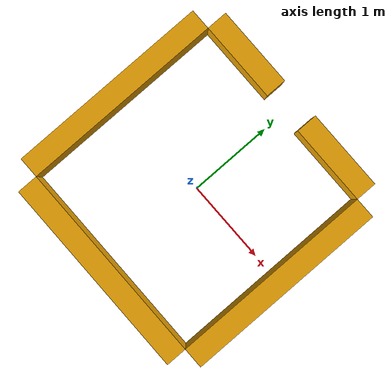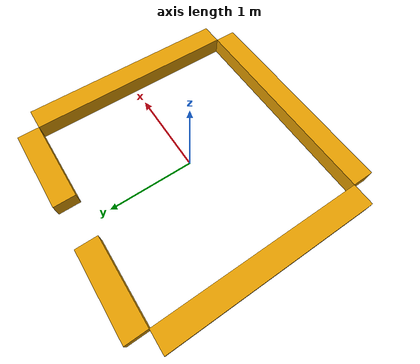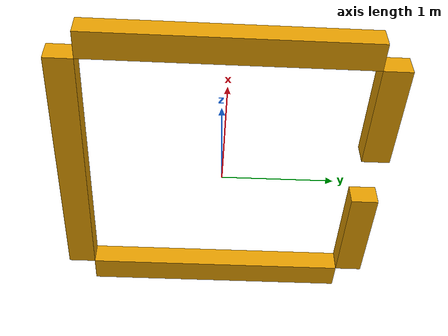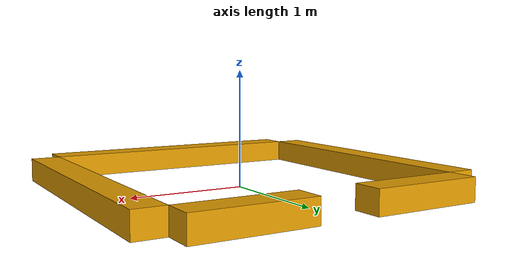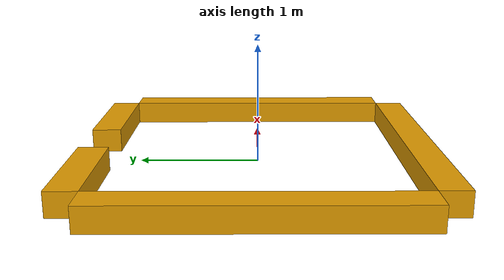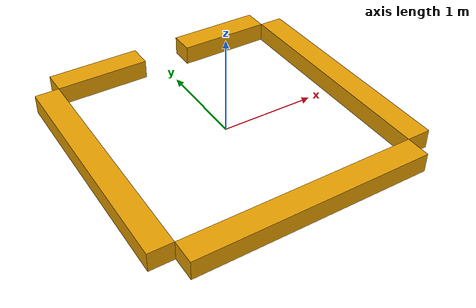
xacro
<?xml version='1.0'?>
<!-- emptyroom_8x8 (origin centered) // URDF MODEL DEFINITION -->

<robot name="emptyroom_8x8" xmlns:xacro="http://www.ros.org/wiki/xacro">

  <xacro:property name="x_dim" value="2.4384" /> <!-- 8ft = 2.4384m -->
  <xacro:property name="y_dim" value="2.4384" />
  <xacro:property name="wall_height" value="0.2" />
  <xacro:property name="wall_thickness" value="0.25" />
  <xacro:property name="exit_width" value="0.5" />

  <xacro:include filename="$(find emptyroom_description)/urdf/emptyroom.gazebo" />

  <link name='walls'>
    <inertial>
      <mass value="0.837"/>
      <inertia
          ixx="0.0007576" ixy="0" ixz="0"
          iyy="0.0015486" iyz="0"
          izz="0.0017524"
      />
    </inertial>

    <collision name='wall_S_collision'>
      <origin xyz="0 ${-y_dim/2-wall_thickness/2} ${wall_height/2}" rpy="0 0 0"/>
      <geometry>
        <box size="${x_dim} ${wall_thickness} ${wall_height}"/>
      </geometry>
    </collision>
    <visual name='wall_S_visual'>
      <origin xyz="0 ${-y_dim/2-wall_thickness/2} ${wall_height/2}" rpy="0 0 0"/>
      <geometry>
        <box size="${x_dim} ${wall_thickness} ${wall_height}"/>
      </geometry>
    </visual>

    <collision name='wall_E_collision'>
      <origin xyz="${x_dim/2+wall_thickness/2} 0 ${wall_height/2}" rpy="0 0 0"/>
      <geometry>
        <box size="${wall_thickness} ${y_dim} ${wall_height}"/>
      </geometry>
    </collision>
    <visual name='wall_E_visual'>
      <origin xyz="${x_dim/2+wall_thickness/2} 0 ${wall_height/2}" rpy="0 0 0"/>
      <geometry>
        <box size="${wall_thickness} ${y_dim} ${wall_height}"/>
      </geometry>
    </visual>

    <collision name='wall_NE_collision'>
      <origin xyz="${x_dim/2-(x_dim-exit_width)/4} ${y_dim/2+wall_thickness/2} ${wall_height/2}" rpy="0 0 0"/>
      <geometry>
        <box size="${(x_dim-exit_width)/2} ${wall_thickness} ${wall_height}"/>
      </geometry>
    </collision>
    <visual name='wall_NE_visual'>
      <origin xyz="${x_dim/2-(x_dim-exit_width)/4} ${y_dim/2+wall_thickness/2} ${wall_height/2}" rpy="0 0 0"/>
      <geometry>
        <box size="${(x_dim-exit_width)/2} ${wall_thickness} ${wall_height}"/>
      </geometry>
    </visual>

    <collision name='wall_NW_collision'>
      <origin xyz="${-x_dim/2+(x_dim-exit_width)/4} ${y_dim/2+wall_thickness/2} ${wall_height/2}" rpy="0 0 0"/>
      <geometry>
        <box size="${(x_dim-exit_width)/2} ${wall_thickness} ${wall_height}"/>
      </geometry>
    </collision>
    <visual name='wall_NW_visual'>
      <origin xyz="${-x_dim/2+(x_dim-exit_width)/4} ${y_dim/2+wall_thickness/2} ${wall_height/2}" rpy="0 0 0"/>
      <geometry>
        <box size="${(x_dim-exit_width)/2} ${wall_thickness} ${wall_height}"/>
      </geometry>
    </visual>

    <collision name='wall_W_collision'>
      <origin xyz="${-x_dim/2-wall_thickness/2} 0 ${wall_height/2}" rpy="0 0 0"/>
      <geometry>
        <box size="${wall_thickness} ${y_dim} ${wall_height}"/>
      </geometry>
    </collision>
    <visual name='wall_W_visual'>
      <origin xyz="${-x_dim/2-wall_thickness/2} 0 ${wall_height/2}" rpy="0 0 0"/>
      <geometry>
        <box size="${wall_thickness} ${y_dim} ${wall_height}"/>
      </geometry>
    </visual>
  </link>

</robot>
